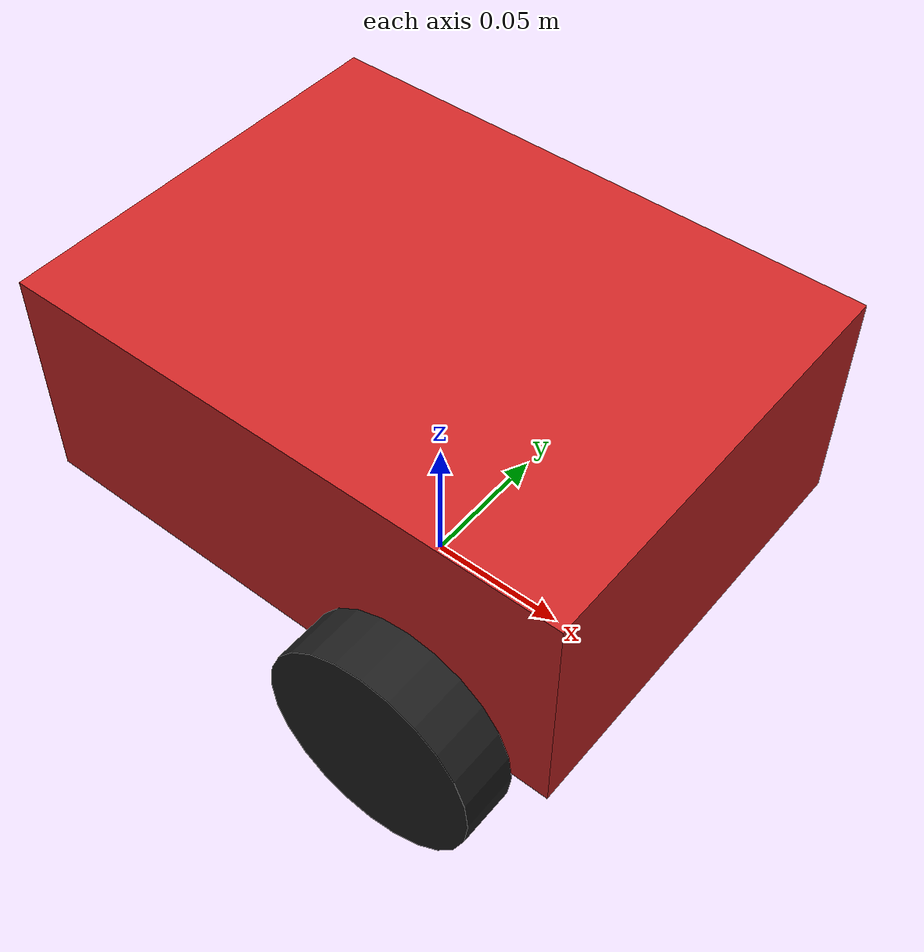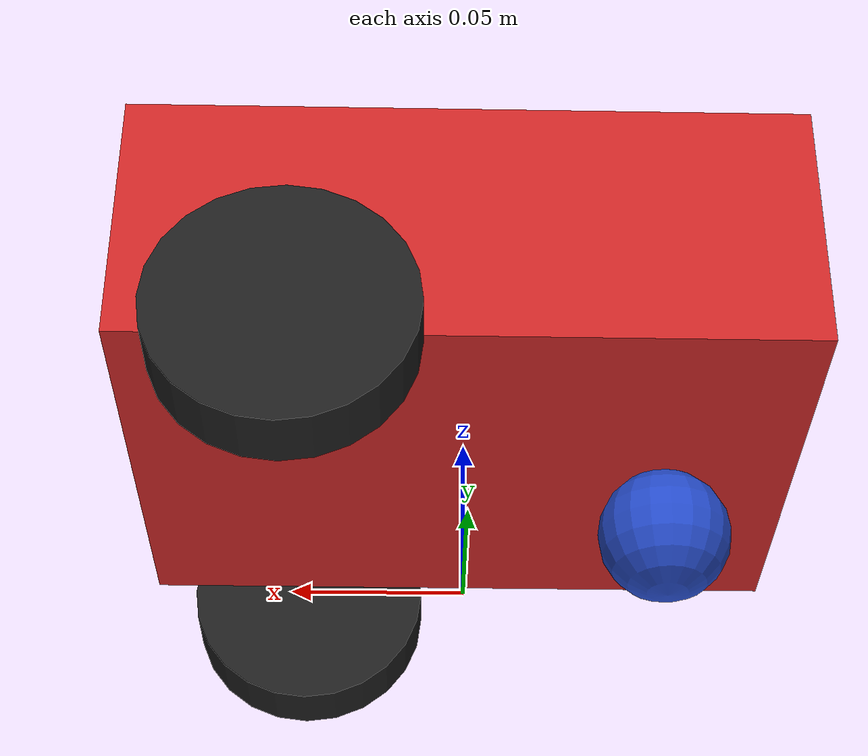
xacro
<?xml version="1.0"?>
<robot xmlns:xacro="http://www.ros.org/wiki/xacro" >

  <xacro:include filename="inertial_macros.xacro"/>

<!-- BASE LINK -->

  <link name="base_link">
    <visual>
      <geometry>
        <box size="0.2 0.15 0.08"/>
      </geometry>
      <origin rpy="0 0 0" xyz="0 0 0.08"/>
    </visual>

    <collision>
      <origin rpy="0 0 0" xyz="0 0 0.08"/>
      <geometry>
        <box size="0.2 0.15 0.08"/>
      </geometry>
    </collision>

    <xacro:inertial_box mass="0.5" x="0.2" y="0.15" z="0.08">
      <origin rpy="0 0 0" xyz="0 0 0.08"/>
    </xacro:inertial_box>
  </link>

<!-- LEFT WHEEL -->

  <joint name="left_wheel" type="continuous">
    <parent link="base_link"/>
    <child link="left_wheel_link"/>
    <origin xyz="0.05 0.085 0.0375" rpy="-1.57 0 0" />
    <axis xyz="0 0 1"/>
    <limit effort="50000" velocity="10"/>
    <dynamics damping="1.0" friction="1.0"/>
  </joint>

  <link name="left_wheel_link">
    <visual>
      <geometry>
        <cylinder length="0.02" radius="0.0375"/>
      </geometry>
      <origin rpy="0 0 0" xyz="0 0 0"/>
    </visual>

    <collision>
      <geometry>
        <cylinder length="0.02" radius="0.0375"/>
      </geometry>
      <origin rpy="0 0 0" xyz="0 0 0"/>
    </collision>

    <xacro:inertial_cylinder mass="0.05" length="0.02" radius="0.0375">
      <origin rpy="0 0 0" xyz="0 0 0"/>
    </xacro:inertial_cylinder>
  </link>

<!-- RIGHT WHEEL -->

  <joint name="right_wheel" type="continuous">
    <parent link="base_link"/>
    <child link="right_wheel_link"/>
    <origin xyz="0.05 -0.085 0.0375" rpy="1.57 0 0" />
    <axis xyz="0 0 -1"/>
    <limit effort="50000" velocity="10"/>
    <dynamics damping="1.0" friction="1.0"/>
  </joint>

  <link name="right_wheel_link">
    <visual>
      <geometry>
        <cylinder length="0.02" radius="0.0375"/>
      </geometry>
      <origin rpy="0 0 0" xyz="0 0 0"/>
    </visual>

    <collision>
      <geometry>
        <cylinder length="0.02" radius="0.0375"/>
      </geometry>
      <origin rpy="0 0 0" xyz="0 0 0"/>
    </collision>

    <xacro:inertial_cylinder mass="0.05" length="0.02" radius="0.0375">
      <origin rpy="0 0 0" xyz="0 0 0"/>
    </xacro:inertial_cylinder>
  </link>

<!-- CASTER WHEEL -->

  <joint name="caster_wheel_joint" type="fixed">
    <parent link="base_link"/>
    <child link="caster_wheel_link"/>
    <origin xyz="-0.06 0 0.02" rpy="0 0 0" />
    <axis xyz="0 0 0"/>
  </joint>

  <link name="caster_wheel_link">
    <visual>
      <geometry>
        <sphere radius="0.02"/>
      </geometry>
      <origin rpy="0 0 0" xyz="0 0 0"/>
    </visual>

    <collision>
      <geometry>
        <sphere radius="0.02"/>
      </geometry>
      <origin rpy="0 0 0" xyz="0 0 0"/>
    </collision>

    <xacro:inertial_sphere mass="0.02" radius="0.02">
      <origin rpy="0 0 0" xyz="0 0 0"/>
    </xacro:inertial_sphere>
  </link>

<!-- GAZEBO DESCRIPTIONS -->

<gazebo reference="base_link">
  <mu1>0.2</mu1>
  <mu2>0.2</mu2>
  <material>Gazebo/Red</material>
</gazebo>

<gazebo reference="left_wheel_link">
  <mu1>0.2</mu1>
  <mu2>0.2</mu2>
  <material>Gazebo/Black</material>
</gazebo>

<gazebo reference="right_wheel_link">
  <mu1>0.2</mu1>
  <mu2>0.2</mu2>
  <material>Gazebo/Black</material>
</gazebo>

<gazebo reference="caster_wheel_link">
  <mu1>0.000002</mu1>
  <mu2>0.000002</mu2>
  <material>Gazebo/Blue</material>
</gazebo>

</robot>
